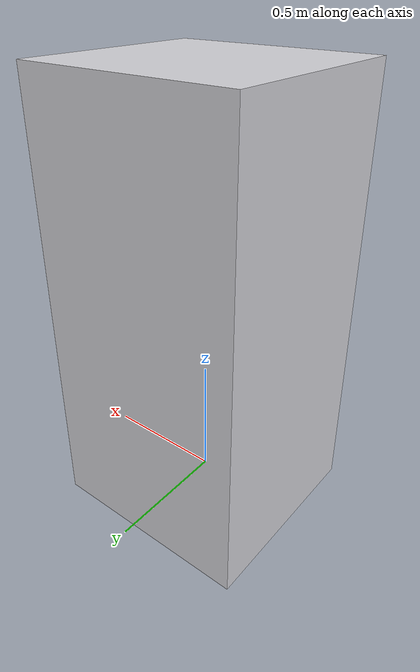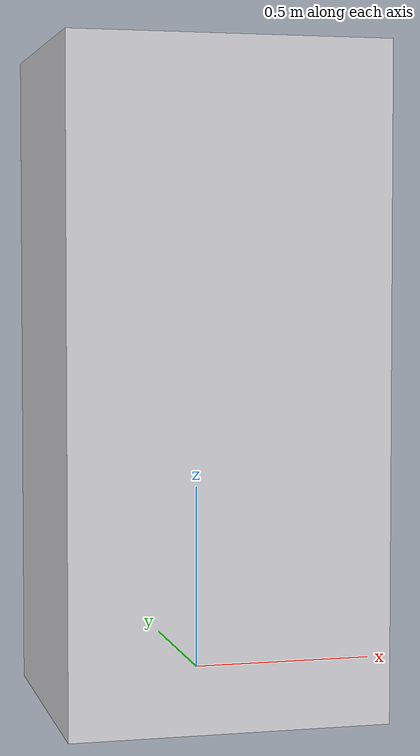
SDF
<?xml version='1.0' encoding='utf-8'?>
<sdf version="1.6">
  <model name="aws_robomaker_residential_Refrigerator_01">
    <static>true</static>
    <link name="link">
      <collision name="collision_1">
        <pose>0 0 0.8 0 0 0</pose>
        <geometry>
          <box>
            <size>0.85 0.8 1.78</size>
          </box>
        </geometry>
      </collision>
      <visual name="visual_1">
        <pose>0 0 0.8 0 0 0</pose>
        <geometry>
          <box>
            <size>0.85 0.8 1.78</size>
          </box>
        </geometry>
        <material>
          <ambient>0.82 0.82 0.84 1</ambient>
          <diffuse>0.82 0.82 0.84 1</diffuse>
          <specular>0.08 0.08 0.08 1</specular>
        </material>
      </visual>
    </link>
  </model>
</sdf>
